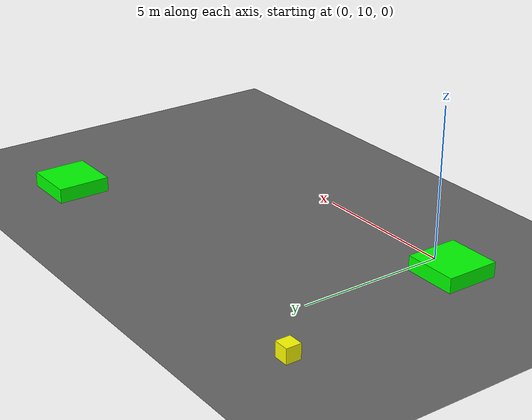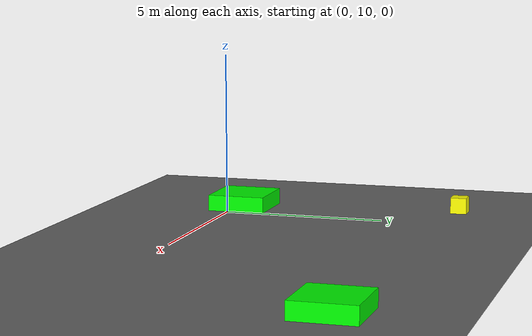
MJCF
<mujoco model="baseline_lvl3_obs2_seed2000">
    <compiler angle="degree" coordinate="local" inertiafromgeom="true"/>
    <option integrator="RK4" timestep="0.01"/>

    <asset>
        <texture builtin="gradient" height="100" rgb1="0.6 0.8 1" rgb2="0 0 0" type="skybox" width="100"/>
        <texture name="floor_texture" type="2d" builtin="checker" width="100" height="100" rgb1="0 0 0" rgb2="0.8 0.8 0.8"/>
        <material name="MatPlane" reflectance="0.5" shininess="1" specular="1" texrepeat="10 10" texture="floor_texture"/>
    </asset>

    <!-- Excluding the contact between the agent and the goal, and the agent and the floor -->
    <contact>
        <exclude body1="agent" body2="goal"/>
        <exclude body1 = "agent" body2 = "floor"/>
    </contact>

    <extension>
        <plugin plugin = "mujoco.pid">
            <instance name = "pid1">
                <config key="kp" value="2"/>
                <config key="ki" value="0"/>
                <config key="kd" value="55"/>
            </instance>
        </plugin>
    </extension>

    <worldbody>
        <light cutoff="100" diffuse="1 1 1" dir="-0 0 -1.3" directional="true" exponent="1" pos="0 0 1.3" specular=".1 .1 .1"/>
        <body name="floor" pos="0 0 0">
            <geom name="floor_geom" type="plane" size="20 20 0.1" material="MatPlane"/>
        </body>

        <!-- Goal -->
        <body name="goal" pos="0.000 0.000 0">
            <geom name="goal_geom" type="plane" size="0.5 0.5 1" pos="0 0 0" rgba="1 0 0 1"/>
        </body>

        <!-- Agent -->
        <body name="agent" pos="-1.969 17.082 0.25">
            <joint name="j1" type="slide" axis ="1 0 0 "/>
            <joint name="j2" type="slide" axis ="0 1 0 "/>
            <geom name="agent_geom" type="box" size="0.25 0.25 0.250" rgba="1 1 0 1"/>
        </body>

    <body name="obstacle1" pos="-0.975 10.246 0.250">
      <geom name="obstacle1_geom" type="box"
            size="0.900 0.900 0.250"
            rgba="0 1 0 1"/>
    </body>
    <body name="obstacle2" pos="11.112 16.583 0.250">
      <geom name="obstacle2_geom" type="box"
            size="0.900 0.900 0.250"
            rgba="0 1 0 1"/>
    </body>
    </worldbody>

    <actuator>
        <plugin joint="j1" plugin="mujoco.pid" instance="pid1" />
        <plugin joint="j2" plugin="mujoco.pid" instance="pid1"/>
    </actuator>

  <sensor>
    <distance name="dist1" geom1="agent_geom" geom2="obstacle1_geom" cutoff="1.5"/>
    <distance name="dist2" geom1="agent_geom" geom2="obstacle2_geom" cutoff="1.5"/>
  </sensor>
</mujoco>
